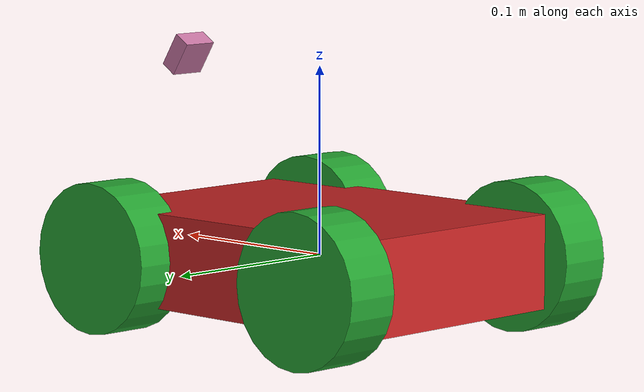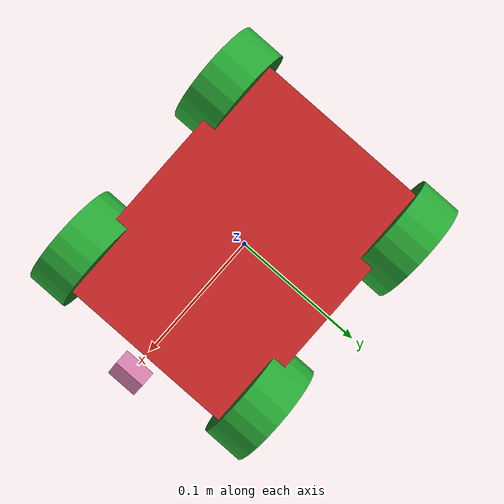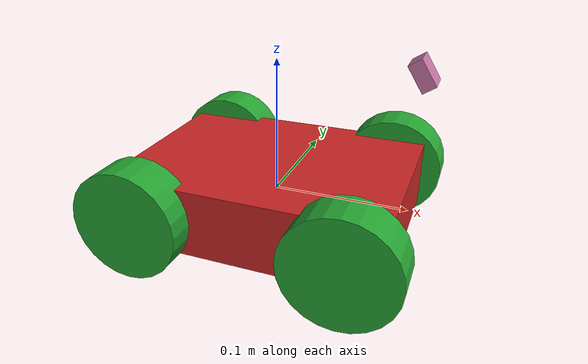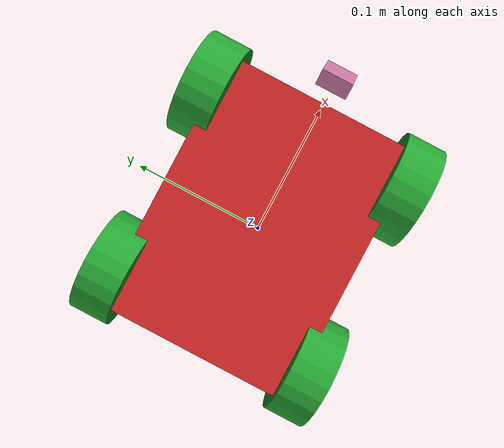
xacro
<?xml version="1.0"?>
<robot name="arm_1dof" xmlns:xacro="http://www.ros.org/wiki/xacro">

    <xacro:include filename="macros.xacro" />
    <xacro:include filename="materials.xacro" />

    <material name="Red"><color rgba="0.8 0.0 0.0 1.0" /></material>
    <material name="Green"><color rgba="0.0 1.0 0.0 1.0" /></material>

    <link name="base_link"></link>

    <joint name="base_link_joint" type="fixed">
        <parent link="base_link"/>
        <child link="chassis"/>
        <origin xyz="0 0 0" rpy="0 0 0"/>
    </joint>

    <link name='chassis'>
      <collision name='chassis_collision'>
        <geometry><box size="0.2 0.15 0.05"/></geometry>
      </collision>
      <visual name='chassis_visual'>
        <geometry><box size="0.2 0.15 0.05"/></geometry>
      </visual>
      <inertial>
        <mass value="0.5"/>
        <inertia ixx="0.00104" ixy="0" ixz="0" iyy="0.0026" iyz="0" izz="0.00177"/>
      </inertial>
    </link>

    <gazebo reference="chassis"><material>Gazebo/Red</material></gazebo>

    <xacro:macro name="wheel" params="name x y">
        <link name="${name}">
            <inertial>
                <mass value="0.025"/>
                <inertia ixx="0.00016" ixy="0" ixz="0" iyy="0.00016" iyz="0" izz="0.00016"/>
            </inertial>
            <collision>
                <origin xyz="0 0 0" rpy="1.5708 0 0"/>
                <geometry><cylinder radius="0.04" length="0.03"/></geometry>
            </collision>
            <visual>
                <origin xyz="0 0 0" rpy="1.5708 0 0"/>
                <geometry><cylinder radius="0.04" length="0.03"/></geometry>
            </visual>
        </link>
        <joint name="${name}_joint" type="continuous">
            <parent link="chassis"/>
            <child link="${name}"/>
            <origin xyz="${x} ${y} 0" rpy="0 0 0"/>
            <axis xyz="0 1 0"/>
        </joint>
        <gazebo reference="${name}">
            <material>Gazebo/Green</material>
            <mu1>1.0</mu1>
            <mu2>1.0</mu2>
        </gazebo>
    </xacro:macro>

    <xacro:wheel name="wheel_FR" x="0.075" y="-0.08"/>
    <xacro:wheel name="wheel_FL" x="0.075" y="0.08"/>
    <xacro:wheel name="wheel_RR" x="-0.075" y="-0.08"/>
    <xacro:wheel name="wheel_RL" x="-0.075" y="0.08"/>

    <link name='camera_link'>
      <visual><geometry><box size="0.02 0.02 0.01"/></geometry></visual>
      <inertial><mass value="0.01"/><inertia ixx="1e-6" ixy="0" ixz="0" iyy="1e-6" iyz="0" izz="1e-6"/></inertial>
    </link>

    <joint name="camera_joint" type="fixed">
        <parent link="chassis"/>
        <child link="camera_link"/>
        <origin xyz="0.1 0 0.1" rpy="0 1.0 0"/>
    </joint>

    <gazebo reference="camera_link">
        <sensor type="camera" name="camera1">
            <update_rate>30.0</update_rate>
            <topic>camera/image_raw</topic>
            <camera name="head">
                <horizontal_fov>1.396</horizontal_fov>
                <image><width>800</width><height>800</height><format>R8G8B8</format></image>
                <clip><near>0.02</near><far>300</far></clip>
            </camera>
            <always_on>1</always_on>
            <visualize>true</visualize>
        </sensor>
    </gazebo>

    <gazebo>
        <plugin filename="gz-sim-diff-drive-system" name="gz::sim::systems::DiffDrive">
            <left_joint>wheel_FL_joint</left_joint>
            <left_joint>wheel_RL_joint</left_joint>
            <right_joint>wheel_FR_joint</right_joint>
            <right_joint>wheel_RR_joint</right_joint>
            <wheel_separation>0.16</wheel_separation>
            <wheel_radius>0.04</wheel_radius>
            <topic>cmd_vel</topic>
        </plugin>
    </gazebo>

</robot>
